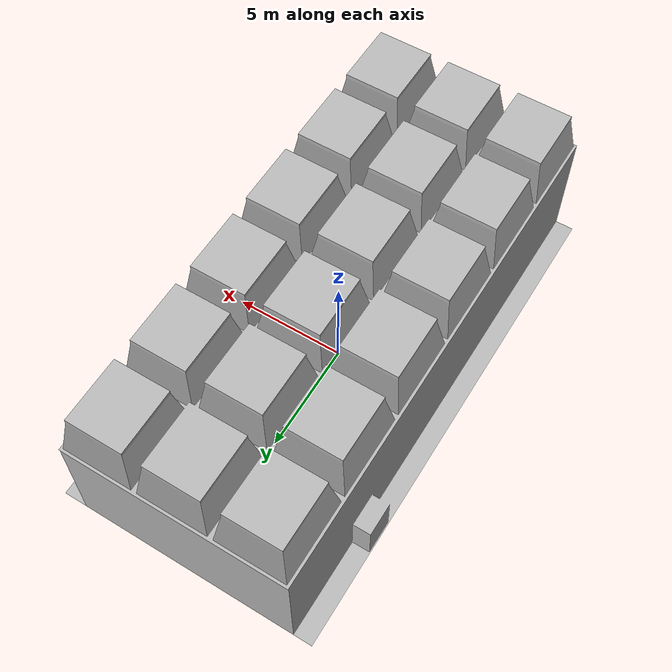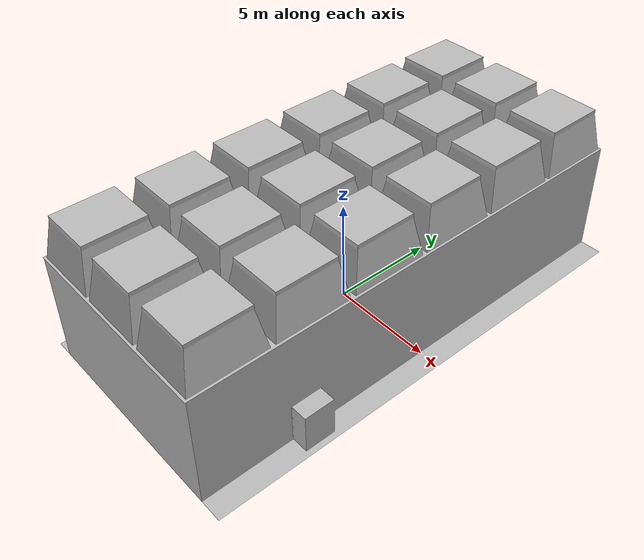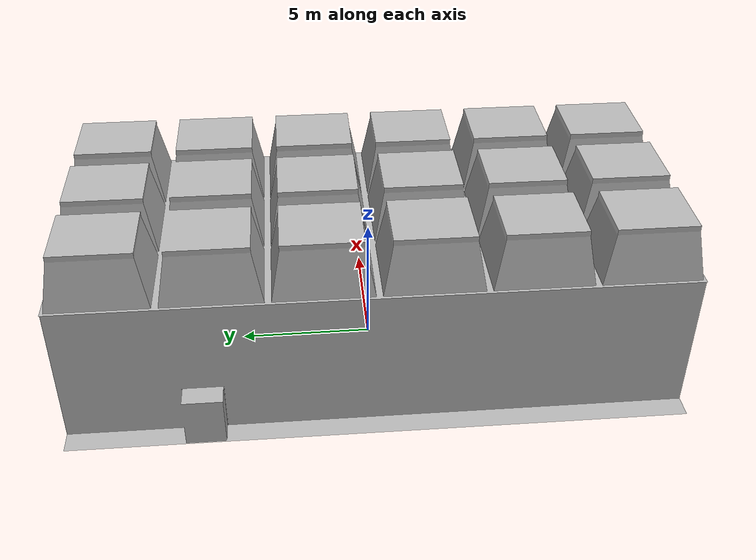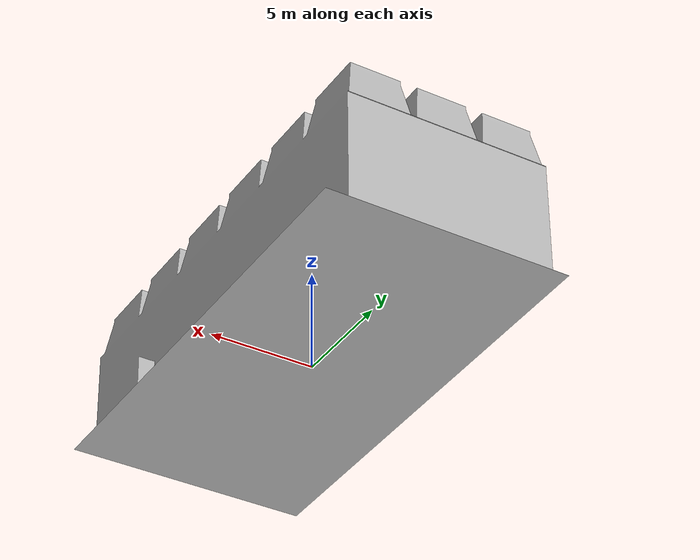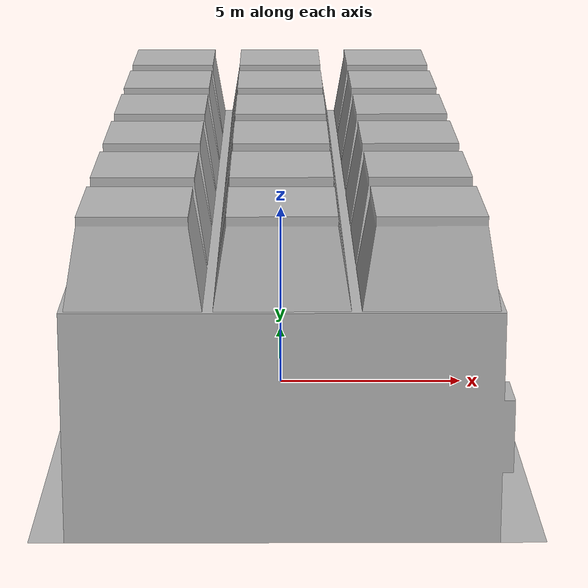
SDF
<?xml version='1.0'?>
<sdf version='1.6'>
  <model name='perception_env1'>
    <link name='link_1'>
         <visual name='visual'>
        <pose frame=''>0 0 0 0 -0 0</pose>
        <geometry>
          <mesh>
            <uri>model://perception_env1/meshes/gallery_room.dae</uri>
            <scale>1.0 1.0 1.0</scale>
          </mesh>
        </geometry>
        <cast_shadows>0</cast_shadows>
        <transparency>0</transparency>
      </visual>
      <collision name='collision'>
        <laser_retro>0</laser_retro>
        <max_contacts>10</max_contacts>
        <pose frame=''>0 0 0 0 -0 0</pose>
        <geometry>
          <mesh>
            <uri>model://perception_env1/meshes/gallery_room_col.stl</uri>
            <scale>1.0 1.0 1.0</scale>
          </mesh>
        </geometry>
     </collision>
    </link>

    <static>1</static>
    <allow_auto_disable>1</allow_auto_disable>
  </model>
</sdf>
